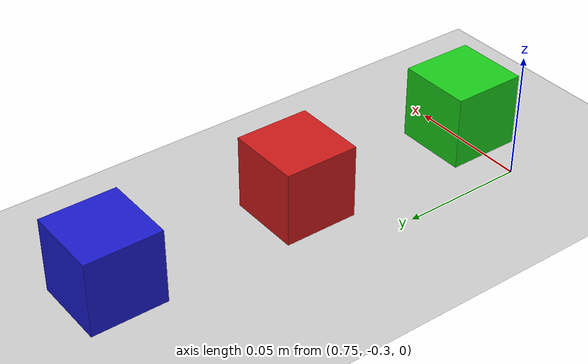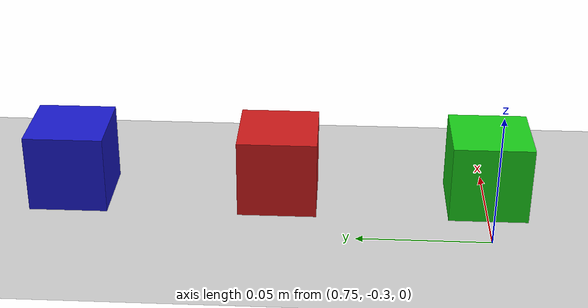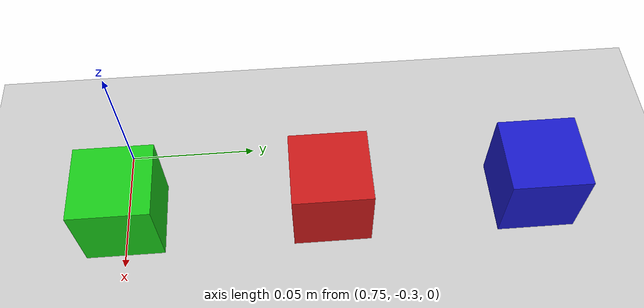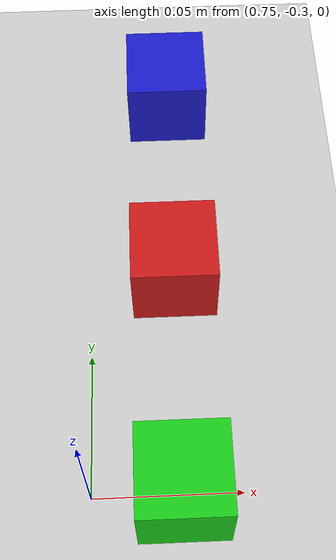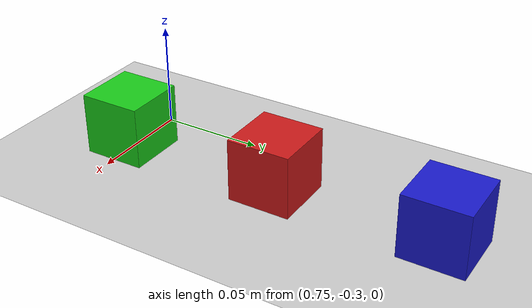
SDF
<?xml version="1.0" ?>
<!--
  Simple warehouse world for LIMO Cobot pick-and-place experiments.
  Contains a ground plane, a table, and basic lighting.

  Author: Omar (Thesis)
-->
<sdf version="1.6">
  <world name="simple_warehouse">

    <plugin name="gazebo_ros_state" filename="libgazebo_ros_state.so">
      <ros>
        <namespace>/gazebo</namespace>
      </ros>
    </plugin>

    <!-- Physics -->
    <physics type="ode">
      <max_step_size>0.001</max_step_size>
      <real_time_factor>1.0</real_time_factor>
      <real_time_update_rate>1000</real_time_update_rate>
    </physics>

    <!-- Lighting -->
    <include>
      <uri>model://sun</uri>
    </include>

    <!-- Ground plane -->
    <include>
      <uri>model://ground_plane</uri>
    </include>

    <!-- Small box (pick-and-place target) -->
    <model name="pick_box">
      <pose>0.78 -0.22 0.015 0 0 0</pose>
      <link name="box_link">
        <inertial>
          <mass>0.05</mass>
          <inertia>
            <ixx>0.0000083</ixx><ixy>0</ixy><ixz>0</ixz>
            <iyy>0.0000083</iyy><iyz>0</iyz>
            <izz>0.0000083</izz>
          </inertia>
        </inertial>
        <collision name="box_collision">
          <geometry>
            <box><size>0.03 0.03 0.03</size></box>
          </geometry>
          <surface>
            <friction>
              <ode><mu>1.0</mu><mu2>1.0</mu2></ode>
            </friction>
          </surface>
        </collision>
        <visual name="box_visual">
          <geometry>
            <box><size>0.03 0.03 0.03</size></box>
          </geometry>
          <material>
            <ambient>0.8 0.1 0.1 1</ambient>
            <diffuse>0.8 0.1 0.1 1</diffuse>
          </material>
        </visual>
      </link>
    </model>

    <!-- Blue box (pick-and-place target 2) -->
    <model name="pick_box_blue">
      <pose>0.78 -0.14 0.015 0 0 0</pose>
      <link name="box_link">
        <inertial>
          <mass>0.05</mass>
          <inertia>
            <ixx>0.0000083</ixx><ixy>0</ixy><ixz>0</ixz>
            <iyy>0.0000083</iyy><iyz>0</iyz>
            <izz>0.0000083</izz>
          </inertia>
        </inertial>
        <collision name="box_collision">
          <geometry>
            <box><size>0.03 0.03 0.03</size></box>
          </geometry>
          <surface>
            <friction>
              <ode><mu>1.0</mu><mu2>1.0</mu2></ode>
            </friction>
          </surface>
        </collision>
        <visual name="box_visual">
          <geometry>
            <box><size>0.03 0.03 0.03</size></box>
          </geometry>
          <material>
            <ambient>0.1 0.1 0.8 1</ambient>
            <diffuse>0.1 0.1 0.8 1</diffuse>
          </material>
        </visual>
      </link>
    </model>

    <!-- Green box (pick-and-place target 3) -->
    <model name="pick_box_green">
      <pose>0.78 -0.30 0.015 0 0 0</pose>
      <link name="box_link">
        <inertial>
          <mass>0.05</mass>
          <inertia>
            <ixx>0.0000083</ixx><ixy>0</ixy><ixz>0</ixz>
            <iyy>0.0000083</iyy><iyz>0</iyz>
            <izz>0.0000083</izz>
          </inertia>
        </inertial>
        <collision name="box_collision">
          <geometry>
            <box><size>0.03 0.03 0.03</size></box>
          </geometry>
          <surface>
            <friction>
              <ode><mu>1.0</mu><mu2>1.0</mu2></ode>
            </friction>
          </surface>
        </collision>
        <visual name="box_visual">
          <geometry>
            <box><size>0.03 0.03 0.03</size></box>
          </geometry>
          <material>
            <ambient>0.1 0.8 0.1 1</ambient>
            <diffuse>0.1 0.8 0.1 1</diffuse>
          </material>
        </visual>
      </link>
    </model>

  </world>
</sdf>
